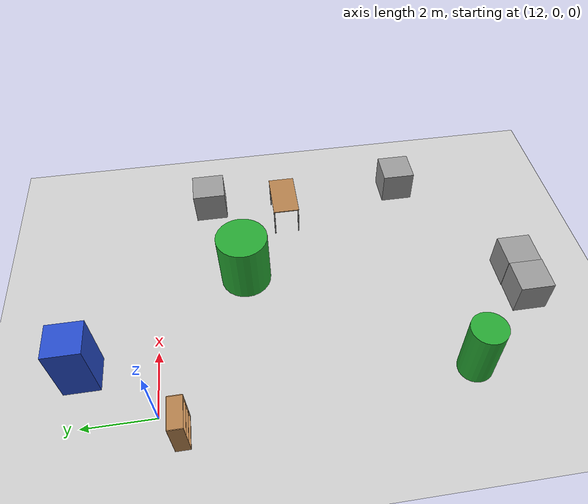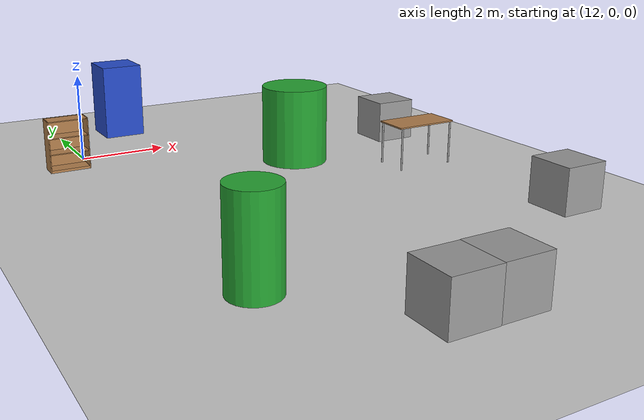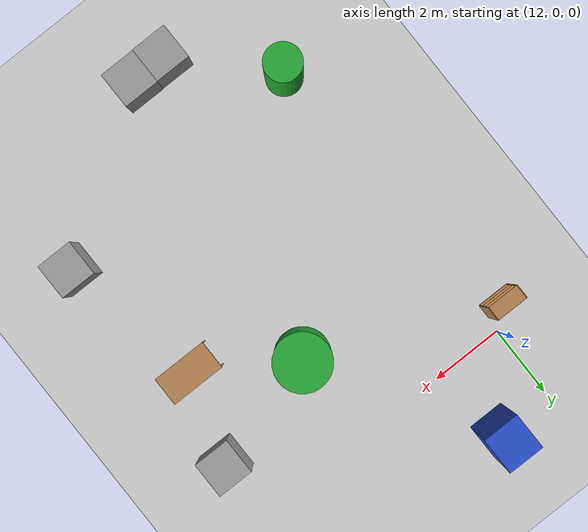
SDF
<sdf version="1.6">
 <world name="default">
  <model name="ground_plane">
   <static>1</static>
   <link name="link">
    <collision name="collision">
     <geometry><plane><normal>0 0 1</normal><size>100 100</size></plane></geometry>
     <surface><friction><ode><mu>100</mu><mu2>50</mu2></ode></friction></surface>
    </collision>
    <visual name="visual">
     <cast_shadows>0</cast_shadows>
     <geometry><plane><normal>0 0 1</normal><size>100 100</size></plane></geometry>
     <material>
      <script><uri>file://media/materials/scripts/gazebo.material</uri><name>Gazebo/Grey</name></script>
     </material>
    </visual>
   </link>
  </model>
  <model name="unit_cylinder_0">
   <link name="link">
    <inertial>
     <mass>1</mass>
     <inertia><ixx>0.145833</ixx><ixy>0</ixy><ixz>0</ixz><iyy>0.145833</iyy><iyz>0</iyz><izz>0.125</izz></inertia>
    </inertial>
    <visual name="visual">
     <geometry><cylinder><radius>0.5</radius><length>1.86672</length></cylinder></geometry>
     <material>
      <script><name>Gazebo/Green</name><uri>file://media/materials/scripts/gazebo.material</uri></script>
      <shader type="vertex"><normal_map>__default__</normal_map></shader>
      <ambient>0 1 0 1</ambient>
      <diffuse>0 1 0 1</diffuse>
      <specular>0.1 0.1 0.1 1</specular>
      <emissive>0 0 0 1</emissive>
     </material>
    </visual>
    <collision name="collision">
     <geometry><cylinder><radius>0.5</radius><length>1.86672</length></cylinder></geometry>
     <surface>
      <friction>
       <ode><mu>1</mu><mu2>1</mu2><fdir1>0 0 0</fdir1><slip1>0</slip1><slip2>0</slip2></ode>
       <torsional>
        <coefficient>1</coefficient>
        <patch_radius>0</patch_radius>
        <surface_radius>0</surface_radius>
        <use_patch_radius>1</use_patch_radius>
        <ode><slip>0</slip></ode>
       </torsional>
      </friction>
      <bounce><restitution_coefficient>0</restitution_coefficient><threshold>1e+06</threshold></bounce>
      <contact>
       <collide_without_contact>0</collide_without_contact>
       <collide_without_contact_bitmask>1</collide_without_contact_bitmask>
       <collide_bitmask>1</collide_bitmask>
       <ode>
        <soft_cfm>0</soft_cfm>
        <soft_erp>0.2</soft_erp>
        <kp>1e+13</kp>
        <kd>1</kd>
        <max_vel>0.01</max_vel>
        <min_depth>0</min_depth>
       </ode>
       <bullet>
        <split_impulse>1</split_impulse>
        <split_impulse_penetration_threshold>-0.01</split_impulse_penetration_threshold>
        <soft_cfm>0</soft_cfm>
        <soft_erp>0.2</soft_erp>
        <kp>1e+13</kp>
        <kd>1</kd>
       </bullet>
      </contact>
     </surface>
    </collision>
   </link>
   <link name="link_clone">
    <inertial>
     <mass>1</mass>
     <inertia><ixx>0.145833</ixx><ixy>0</ixy><ixz>0</ixz><iyy>0.145833</iyy><iyz>0</iyz><izz>0.125</izz></inertia>
    </inertial>
    <pose>3.95372 6.03948 0 0 -0 -1e-06</pose>
    <visual name="visual">
     <geometry><cylinder><radius>0.75</radius><length>1.8</length></cylinder></geometry>
     <material>
      <script><name>Gazebo/Green</name><uri>file://media/materials/scripts/gazebo.material</uri></script>
      <shader type="vertex"><normal_map>__default__</normal_map></shader>
      <ambient>0 1 0 1</ambient>
      <diffuse>0 1 0 1</diffuse>
      <specular>0.1 0.1 0.1 1</specular>
      <emissive>0 0 0 1</emissive>
     </material>
    </visual>
    <collision name="collision">
     <geometry><cylinder><radius>0.75</radius><length>1.8</length></cylinder></geometry>
     <surface>
      <friction>
       <ode><mu>1</mu><mu2>1</mu2><fdir1>0 0 0</fdir1><slip1>0</slip1><slip2>0</slip2></ode>
       <torsional>
        <coefficient>1</coefficient>
        <patch_radius>0</patch_radius>
        <surface_radius>0</surface_radius>
        <use_patch_radius>1</use_patch_radius>
        <ode><slip>0</slip></ode>
       </torsional>
      </friction>
      <bounce><restitution_coefficient>0</restitution_coefficient><threshold>1e+06</threshold></bounce>
      <contact>
       <collide_without_contact>0</collide_without_contact>
       <collide_without_contact_bitmask>1</collide_without_contact_bitmask>
       <collide_bitmask>1</collide_bitmask>
       <ode>
        <soft_cfm>0</soft_cfm>
        <soft_erp>0.2</soft_erp>
        <kp>1e+13</kp>
        <kd>1</kd>
        <max_vel>0.01</max_vel>
        <min_depth>0</min_depth>
       </ode>
       <bullet>
        <split_impulse>1</split_impulse>
        <split_impulse_penetration_threshold>-0.01</split_impulse_penetration_threshold>
        <soft_cfm>0</soft_cfm>
        <soft_erp>0.2</soft_erp>
        <kp>1e+13</kp>
        <kd>1</kd>
       </bullet>
      </contact>
     </surface>
    </collision>
   </link>
   <static>0</static>
   <pose>12.228 -8.58803 0.933352 0 0 -0.024433</pose>
  </model>
  <model name="unit_box_0">
   <link name="link">
    <inertial>
     <mass>1</mass>
     <inertia>
      <ixx>0.166667</ixx>
      <ixy>0</ixy>
      <ixz>0</ixz>
      <iyy>0.166667</iyy>
      <iyz>0</iyz>
      <izz>0.166667</izz>
     </inertia>
    </inertial>
    <visual name="visual">
     <geometry><box><size>1 1 1.83986</size></box></geometry>
     <material>
      <script><name>Gazebo/Blue</name><uri>file://media/materials/scripts/gazebo.material</uri></script>
      <shader type="vertex"><normal_map>__default__</normal_map></shader>
      <ambient>0 0 1 1</ambient>
      <diffuse>0 0 1 1</diffuse>
      <specular>0.1 0.1 0.1 1</specular>
      <emissive>0 0 0 1</emissive>
     </material>
    </visual>
    <collision name="collision">
     <geometry><box><size>1 1 1.83986</size></box></geometry>
     <surface>
      <friction>
       <ode><mu>1</mu><mu2>1</mu2><fdir1>0 0 0</fdir1><slip1>0</slip1><slip2>0</slip2></ode>
       <torsional>
        <coefficient>1</coefficient>
        <patch_radius>0</patch_radius>
        <surface_radius>0</surface_radius>
        <use_patch_radius>1</use_patch_radius>
        <ode><slip>0</slip></ode>
       </torsional>
      </friction>
      <bounce><restitution_coefficient>0</restitution_coefficient><threshold>1e+06</threshold></bounce>
      <contact>
       <collide_without_contact>0</collide_without_contact>
       <collide_without_contact_bitmask>1</collide_without_contact_bitmask>
       <collide_bitmask>1</collide_bitmask>
       <ode>
        <soft_cfm>0</soft_cfm>
        <soft_erp>0.2</soft_erp>
        <kp>1e+13</kp>
        <kd>1</kd>
        <max_vel>0.01</max_vel>
        <min_depth>0</min_depth>
       </ode>
       <bullet>
        <split_impulse>1</split_impulse>
        <split_impulse_penetration_threshold>-0.01</split_impulse_penetration_threshold>
        <soft_cfm>0</soft_cfm>
        <soft_erp>0.2</soft_erp>
        <kp>1e+13</kp>
        <kd>1</kd>
       </bullet>
      </contact>
     </surface>
    </collision>
   </link>
   <static>0</static>
   <pose>13.5748 2.01789 0.91993 1e-06 1e-06 0.002172</pose>
  </model>
  <model name="bookshelf_0">
   <static>1</static>
   <link name="link">
    <inertial><mass>1</mass></inertial>
    <collision name="back">
     <pose>0 0.005 0.6 0 -0 0</pose>
     <geometry><box><size>0.9 0.01 1.2</size></box></geometry>
    </collision>
    <visual name="visual1">
     <pose>0 0.005 0.6 0 -0 0</pose>
     <geometry><box><size>0.9 0.01 1.2</size></box></geometry>
     <material>
      <script><uri>file://media/materials/scripts/gazebo.material</uri><name>Gazebo/Wood</name></script>
     </material>
    </visual>
    <collision name="left_side">
     <pose>0.45 -0.195 0.6 0 -0 0</pose>
     <geometry><box><size>0.02 0.4 1.2</size></box></geometry>
    </collision>
    <visual name="visual2">
     <pose>0.45 -0.195 0.6 0 -0 0</pose>
     <geometry><box><size>0.02 0.4 1.2</size></box></geometry>
     <material>
      <script><uri>file://media/materials/scripts/gazebo.material</uri><name>Gazebo/Wood</name></script>
     </material>
    </visual>
    <collision name="right_side">
     <pose>-0.45 -0.195 0.6 0 -0 0</pose>
     <geometry><box><size>0.02 0.4 1.2</size></box></geometry>
    </collision>
    <visual name="visual3">
     <pose>-0.45 -0.195 0.6 0 -0 0</pose>
     <geometry><box><size>0.02 0.4 1.2</size></box></geometry>
     <material>
      <script><uri>file://media/materials/scripts/gazebo.material</uri><name>Gazebo/Wood</name></script>
     </material>
    </visual>
    <collision name="bottom">
     <pose>0 -0.195 0.03 0 -0 0</pose>
     <geometry><box><size>0.88 0.4 0.06</size></box></geometry>
    </collision>
    <visual name="visual4">
     <pose>0 -0.195 0.03 0 -0 0</pose>
     <geometry><box><size>0.88 0.4 0.06</size></box></geometry>
     <material>
      <script><uri>file://media/materials/scripts/gazebo.material</uri><name>Gazebo/Wood</name></script>
     </material>
    </visual>
    <collision name="top">
     <pose>0 -0.195 1.19 0 -0 0</pose>
     <geometry><box><size>0.88 0.4 0.02</size></box></geometry>
    </collision>
    <visual name="visual5">
     <pose>0 -0.195 1.19 0 -0 0</pose>
     <geometry><box><size>0.88 0.4 0.02</size></box></geometry>
     <material>
      <script><uri>file://media/materials/scripts/gazebo.material</uri><name>Gazebo/Wood</name></script>
     </material>
    </visual>
    <collision name="low_shelf">
     <pose>0 -0.195 0.43 0 -0 0</pose>
     <geometry><box><size>0.88 0.4 0.02</size></box></geometry>
    </collision>
    <visual name="visual6">
     <pose>0 -0.195 0.43 0 -0 0</pose>
     <geometry><box><size>0.88 0.4 0.02</size></box></geometry>
     <material>
      <script><uri>file://media/materials/scripts/gazebo.material</uri><name>Gazebo/Wood</name></script>
     </material>
    </visual>
    <collision name="high_shelf">
     <pose>0 -0.195 0.8 0 -0 0</pose>
     <geometry><box><size>0.88 0.4 0.02</size></box></geometry>
    </collision>
    <visual name="visual7">
     <pose>0 -0.195 0.8 0 -0 0</pose>
     <geometry><box><size>0.88 0.4 0.02</size></box></geometry>
     <material>
      <script><uri>file://media/materials/scripts/gazebo.material</uri><name>Gazebo/Wood</name></script>
     </material>
    </visual>
   </link>
   <pose>11.4879 -0.420536 0 0 -0 0</pose>
  </model>
  <model name="table">
   <static>1</static>
   <link name="link">
    <collision name="surface">
     <pose>0 0 1 0 -0 0</pose>
     <geometry><box><size>1.5 0.8 0.03</size></box></geometry>
     <surface><friction><ode><mu>0.6</mu><mu2>0.6</mu2></ode></friction></surface>
    </collision>
    <visual name="visual1">
     <pose>0 0 1 0 -0 0</pose>
     <geometry><box><size>1.5 0.8 0.03</size></box></geometry>
     <material>
      <script><uri>file://media/materials/scripts/gazebo.material</uri><name>Gazebo/Wood</name></script>
     </material>
    </visual>
    <collision name="front_left_leg">
     <pose>0.68 0.38 0.5 0 -0 0</pose>
     <geometry><cylinder><radius>0.02</radius><length>1</length></cylinder></geometry>
    </collision>
    <visual name="front_left_leg">
     <pose>0.68 0.38 0.5 0 -0 0</pose>
     <geometry><cylinder><radius>0.02</radius><length>1</length></cylinder></geometry>
     <material>
      <script><uri>file://media/materials/scripts/gazebo.material</uri><name>Gazebo/Grey</name></script>
     </material>
    </visual>
    <collision name="front_right_leg">
     <pose>0.68 -0.38 0.5 0 -0 0</pose>
     <geometry><cylinder><radius>0.02</radius><length>1</length></cylinder></geometry>
    </collision>
    <visual name="front_right_leg">
     <pose>0.68 -0.38 0.5 0 -0 0</pose>
     <geometry><cylinder><radius>0.02</radius><length>1</length></cylinder></geometry>
     <material>
      <script><uri>file://media/materials/scripts/gazebo.material</uri><name>Gazebo/Grey</name></script>
     </material>
    </visual>
    <collision name="back_right_leg">
     <pose>-0.68 -0.38 0.5 0 -0 0</pose>
     <geometry><cylinder><radius>0.02</radius><length>1</length></cylinder></geometry>
    </collision>
    <visual name="back_right_leg">
     <pose>-0.68 -0.38 0.5 0 -0 0</pose>
     <geometry><cylinder><radius>0.02</radius><length>1</length></cylinder></geometry>
     <material>
      <script><uri>file://media/materials/scripts/gazebo.material</uri><name>Gazebo/Grey</name></script>
     </material>
    </visual>
    <collision name="back_left_leg">
     <pose>-0.68 0.38 0.5 0 -0 0</pose>
     <geometry><cylinder><radius>0.02</radius><length>1</length></cylinder></geometry>
    </collision>
    <visual name="back_left_leg">
     <pose>-0.68 0.38 0.5 0 -0 0</pose>
     <geometry><cylinder><radius>0.02</radius><length>1</length></cylinder></geometry>
     <material>
      <script><uri>file://media/materials/scripts/gazebo.material</uri><name>Gazebo/Grey</name></script>
     </material>
    </visual>
   </link>
   <pose>18.7719 -4.13265 0 0 -0 0</pose>
  </model>
  <model name="unit_box_5">
   <pose>19.5668 -1.73904 0.5 0 -0 1e-06</pose>
   <link name="link">
    <inertial>
     <mass>1</mass>
     <inertia>
      <ixx>0.166667</ixx>
      <ixy>0</ixy>
      <ixz>0</ixz>
      <iyy>0.166667</iyy>
      <iyz>0</iyz>
      <izz>0.166667</izz>
     </inertia>
    </inertial>
    <collision name="collision"><geometry><box><size>1 1 1</size></box></geometry></collision>
    <visual name="visual">
     <geometry><box><size>1 1 1</size></box></geometry>
     <material>
      <script><name>Gazebo/Grey</name><uri>file://media/materials/scripts/gazebo.material</uri></script>
     </material>
    </visual>
   </link>
  </model>
  <model name="unit_box_6">
   <pose>19.5668 -8.04521 0.499995 0 9e-06 -1e-06</pose>
   <link name="link">
    <inertial>
     <mass>1</mass>
     <inertia>
      <ixx>0.166667</ixx>
      <ixy>0</ixy>
      <ixz>0</ixz>
      <iyy>0.166667</iyy>
      <iyz>0</iyz>
      <izz>0.166667</izz>
     </inertia>
    </inertial>
    <collision name="collision"><geometry><box><size>1 1 1</size></box></geometry></collision>
    <visual name="visual">
     <geometry><box><size>1 1 1</size></box></geometry>
     <material>
      <script><name>Gazebo/Grey</name><uri>file://media/materials/scripts/gazebo.material</uri></script>
     </material>
    </visual>
   </link>
  </model>
  <model name="unit_box_7">
   <pose>15.3728 -10.7997 0.5 -0 -0 -6e-06</pose>
   <link name="link">
    <inertial>
     <mass>1</mass>
     <inertia>
      <ixx>0.166667</ixx>
      <ixy>0</ixy>
      <ixz>0</ixz>
      <iyy>0.166667</iyy>
      <iyz>0</iyz>
      <izz>0.166667</izz>
     </inertia>
    </inertial>
    <collision name="collision"><geometry><box><size>1 1 1</size></box></geometry></collision>
    <visual name="visual">
     <geometry><box><size>1 1 1</size></box></geometry>
     <material>
      <script><name>Gazebo/Grey</name><uri>file://media/materials/scripts/gazebo.material</uri></script>
     </material>
    </visual>
   </link>
  </model>
  <model name="unit_box_8">
   <pose>14.3728 -10.8127 0.5 0 0 -3e-06</pose>
   <link name="link">
    <inertial>
     <mass>1</mass>
     <inertia>
      <ixx>0.166667</ixx>
      <ixy>0</ixy>
      <ixz>0</ixz>
      <iyy>0.166667</iyy>
      <iyz>0</iyz>
      <izz>0.166667</izz>
     </inertia>
    </inertial>
    <collision name="collision"><geometry><box><size>1 1 1</size></box></geometry></collision>
    <visual name="visual">
     <geometry><box><size>1 1 1</size></box></geometry>
     <material>
      <script><name>Gazebo/Grey</name><uri>file://media/materials/scripts/gazebo.material</uri></script>
     </material>
    </visual>
   </link>
  </model>
 </world>
</sdf>
